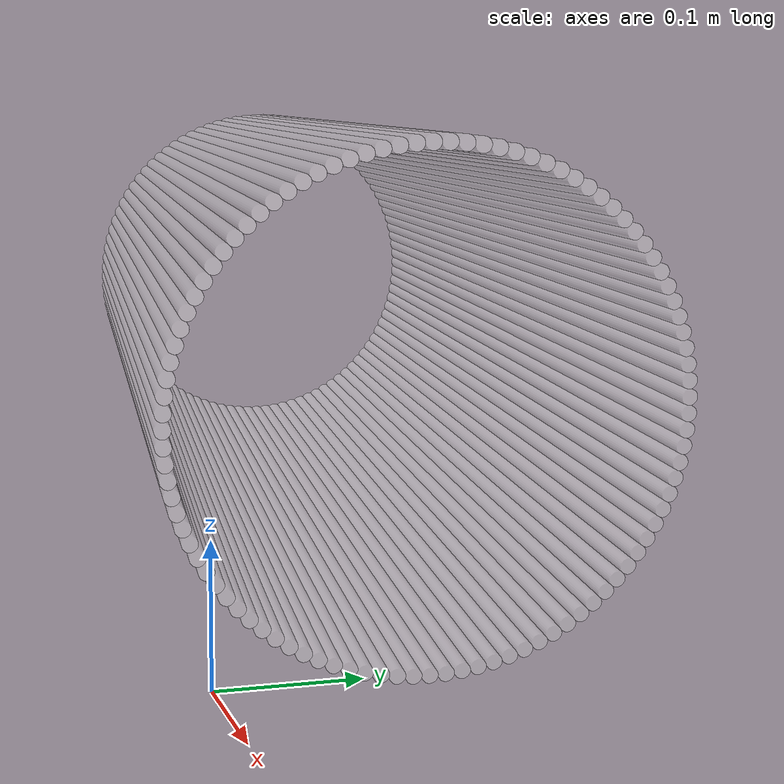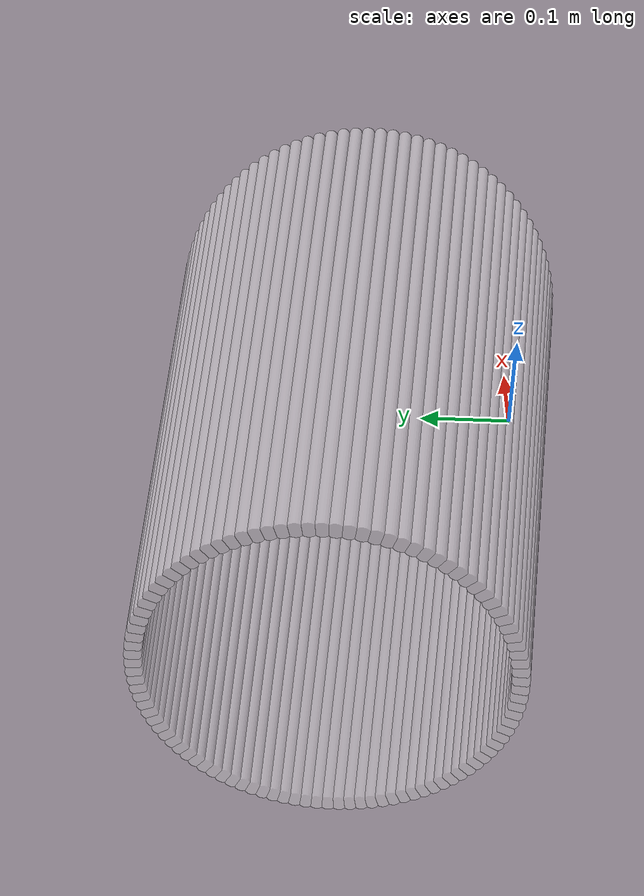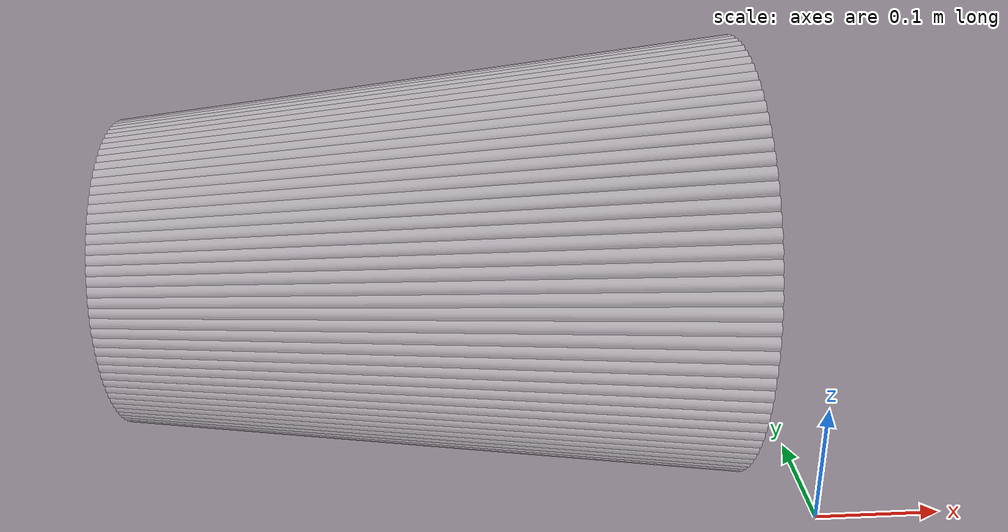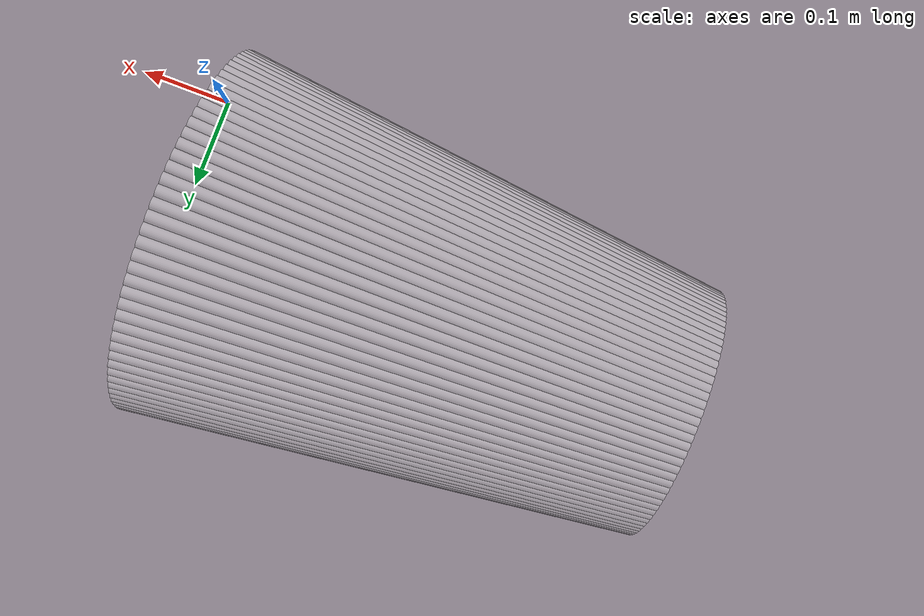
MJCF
<?xml version="1.0" encoding="utf-8"?>
<mujoco>
   <worldbody>
      <body pos="0 0.34 0" euler="0 0 270">
      <geom euler=" 0 10 0 " fromto="0.36 -0.05 0.16 0.3 -0.55 0.16" rgba="1 1 1 0.35"
            size="0.0056539"
            type="cylinder"/>
      <geom euler=" 0 20 0 " fromto="0.35964 -0.05 0.1713 0.29976 -0.55 0.16753"
            rgba="1 1 1 0.35"
            size="0.0056539"
            type="cylinder"/>
      <geom euler=" 0 30 0 " fromto="0.35858 -0.05 0.18256 0.29905 -0.55 0.17504"
            rgba="1 1 1 0.35"
            size="0.0056539"
            type="cylinder"/>
      <geom euler=" 0 40 0 " fromto="0.35681 -0.05 0.19373 0.29787 -0.55 0.18249"
            rgba="1 1 1 0.35"
            size="0.0056539"
            type="cylinder"/>
      <geom euler=" 0 50 0 " fromto="0.35434 -0.05 0.20476 0.29623 -0.55 0.18984"
            rgba="1 1 1 0.35"
            size="0.0056539"
            type="cylinder"/>
      <geom euler=" 0 60 0 " fromto="0.35119 -0.05 0.21562 0.29413 -0.55 0.19708"
            rgba="1 1 1 0.35"
            size="0.0056539"
            type="cylinder"/>
      <geom euler=" 0 70 0 " fromto="0.34736 -0.05 0.22626 0.29157 -0.55 0.20417"
            rgba="1 1 1 0.35"
            size="0.0056539"
            type="cylinder"/>
      <geom euler=" 0 80 0 " fromto="0.34287 -0.05 0.23664 0.28858 -0.55 0.21109"
            rgba="1 1 1 0.35"
            size="0.0056539"
            type="cylinder"/>
      <geom euler=" 0 90 0 " fromto="0.33774 -0.05 0.24672 0.28516 -0.55 0.21781"
            rgba="1 1 1 0.35"
            size="0.0056539"
            type="cylinder"/>
      <geom euler=" 0 100 0 " fromto="0.33198 -0.05 0.25645 0.28132 -0.55 0.2243"
            rgba="1 1 1 0.35"
            size="0.0056539"
            type="cylinder"/>
      <geom euler=" 0 110 0 " fromto="0.32562 -0.05 0.2658 0.27708 -0.55 0.23053"
            rgba="1 1 1 0.35"
            size="0.0056539"
            type="cylinder"/>
      <geom euler=" 0 120 0 " fromto="0.31869 -0.05 0.27474 0.27246 -0.55 0.23649"
            rgba="1 1 1 0.35"
            size="0.0056539"
            type="cylinder"/>
      <geom euler=" 0 130 0 " fromto="0.31121 -0.05 0.28322 0.26748 -0.55 0.24215"
            rgba="1 1 1 0.35"
            size="0.0056539"
            type="cylinder"/>
      <geom euler=" 0 140 0 " fromto="0.30322 -0.05 0.29121 0.26215 -0.55 0.24748"
            rgba="1 1 1 0.35"
            size="0.0056539"
            type="cylinder"/>
      <geom euler=" 0 150 0 " fromto="0.29474 -0.05 0.29869 0.25649 -0.55 0.25246"
            rgba="1 1 1 0.35"
            size="0.0056539"
            type="cylinder"/>
      <geom euler=" 0 160 0 " fromto="0.2858 -0.05 0.30562 0.25053 -0.55 0.25708"
            rgba="1 1 1 0.35"
            size="0.0056539"
            type="cylinder"/>
      <geom euler=" 0 170 0 " fromto="0.27645 -0.05 0.31198 0.2443 -0.55 0.26132"
            rgba="1 1 1 0.35"
            size="0.0056539"
            type="cylinder"/>
      <geom euler=" 0 180 0 " fromto="0.26672 -0.05 0.31774 0.23781 -0.55 0.26516"
            rgba="1 1 1 0.35"
            size="0.0056539"
            type="cylinder"/>
      <geom euler=" 0 190 0 " fromto="0.25664 -0.05 0.32287 0.23109 -0.55 0.26858"
            rgba="1 1 1 0.35"
            size="0.0056539"
            type="cylinder"/>
      <geom euler=" 0 200 0 " fromto="0.24626 -0.05 0.32736 0.22417 -0.55 0.27157"
            rgba="1 1 1 0.35"
            size="0.0056539"
            type="cylinder"/>
      <geom euler=" 0 210 0 " fromto="0.23562 -0.05 0.33119 0.21708 -0.55 0.27413"
            rgba="1 1 1 0.35"
            size="0.0056539"
            type="cylinder"/>
      <geom euler=" 0 220 0 " fromto="0.22476 -0.05 0.33434 0.20984 -0.55 0.27623"
            rgba="1 1 1 0.35"
            size="0.0056539"
            type="cylinder"/>
      <geom euler=" 0 230 0 " fromto="0.21373 -0.05 0.33681 0.20249 -0.55 0.27787"
            rgba="1 1 1 0.35"
            size="0.0056539"
            type="cylinder"/>
      <geom euler=" 0 240 0 " fromto="0.20256 -0.05 0.33858 0.19504 -0.55 0.27905"
            rgba="1 1 1 0.35"
            size="0.0056539"
            type="cylinder"/>
      <geom euler=" 0 250 0 " fromto="0.1913 -0.05 0.33964 0.18753 -0.55 0.27976"
            rgba="1 1 1 0.35"
            size="0.0056539"
            type="cylinder"/>
      <geom euler=" 0 260 0 " fromto="0.18 -0.05 0.34 0.18 -0.55 0.28" rgba="1 1 1 0.35"
            size="0.0056539"
            type="cylinder"/>
      <geom euler=" 0 270 0 " fromto="0.1687 -0.05 0.33964 0.17247 -0.55 0.27976"
            rgba="1 1 1 0.35"
            size="0.0056539"
            type="cylinder"/>
      <geom euler=" 0 280 0 " fromto="0.15744 -0.05 0.33858 0.16496 -0.55 0.27905"
            rgba="1 1 1 0.35"
            size="0.0056539"
            type="cylinder"/>
      <geom euler=" 0 290 0 " fromto="0.14627 -0.05 0.33681 0.15751 -0.55 0.27787"
            rgba="1 1 1 0.35"
            size="0.0056539"
            type="cylinder"/>
      <geom euler=" 0 300 0 " fromto="0.13524 -0.05 0.33434 0.15016 -0.55 0.27623"
            rgba="1 1 1 0.35"
            size="0.0056539"
            type="cylinder"/>
      <geom euler=" 0 310 0 " fromto="0.12438 -0.05 0.33119 0.14292 -0.55 0.27413"
            rgba="1 1 1 0.35"
            size="0.0056539"
            type="cylinder"/>
      <geom euler=" 0 320 0 " fromto="0.11374 -0.05 0.32736 0.13583 -0.55 0.27157"
            rgba="1 1 1 0.35"
            size="0.0056539"
            type="cylinder"/>
      <geom euler=" 0 330 0 " fromto="0.10336 -0.05 0.32287 0.12891 -0.55 0.26858"
            rgba="1 1 1 0.35"
            size="0.0056539"
            type="cylinder"/>
      <geom euler=" 0 340 0 " fromto="0.093284 -0.05 0.31774 0.12219 -0.55 0.26516"
            rgba="1 1 1 0.35"
            size="0.0056539"
            type="cylinder"/>
      <geom euler=" 0 350 0 " fromto="0.083551 -0.05 0.31198 0.1157 -0.55 0.26132"
            rgba="1 1 1 0.35"
            size="0.0056539"
            type="cylinder"/>
      <geom euler=" 0 360 0 " fromto="0.074199 -0.05 0.30562 0.10947 -0.55 0.25708"
            rgba="1 1 1 0.35"
            size="0.0056539"
            type="cylinder"/>
      <geom euler=" 0 370 0 " fromto="0.065264 -0.05 0.29869 0.10351 -0.55 0.25246"
            rgba="1 1 1 0.35"
            size="0.0056539"
            type="cylinder"/>
      <geom euler=" 0 380 0 " fromto="0.056782 -0.05 0.29121 0.097854 -0.55 0.24748"
            rgba="1 1 1 0.35"
            size="0.0056539"
            type="cylinder"/>
      <geom euler=" 0 390 0 " fromto="0.048786 -0.05 0.28322 0.092524 -0.55 0.24215"
            rgba="1 1 1 0.35"
            size="0.0056539"
            type="cylinder"/>
      <geom euler=" 0 400 0 " fromto="0.041308 -0.05 0.27474 0.087538 -0.55 0.23649"
            rgba="1 1 1 0.35"
            size="0.0056539"
            type="cylinder"/>
      <geom euler=" 0 410 0 " fromto="0.034377 -0.05 0.2658 0.082918 -0.55 0.23053"
            rgba="1 1 1 0.35"
            size="0.0056539"
            type="cylinder"/>
      <geom euler=" 0 420 0 " fromto="0.028021 -0.05 0.25645 0.078681 -0.55 0.2243"
            rgba="1 1 1 0.35"
            size="0.0056539"
            type="cylinder"/>
      <geom euler=" 0 430 0 " fromto="0.022265 -0.05 0.24672 0.074843 -0.55 0.21781"
            rgba="1 1 1 0.35"
            size="0.0056539"
            type="cylinder"/>
      <geom euler=" 0 440 0 " fromto="0.017131 -0.05 0.23664 0.071421 -0.55 0.21109"
            rgba="1 1 1 0.35"
            size="0.0056539"
            type="cylinder"/>
      <geom euler=" 0 450 0 " fromto="0.01264 -0.05 0.22626 0.068427 -0.55 0.20417"
            rgba="1 1 1 0.35"
            size="0.0056539"
            type="cylinder"/>
      <geom euler=" 0 460 0 " fromto="0.0088098 -0.05 0.21562 0.065873 -0.55 0.19708"
            rgba="1 1 1 0.35"
            size="0.0056539"
            type="cylinder"/>
      <geom euler=" 0 470 0 " fromto="0.005655 -0.05 0.20476 0.06377 -0.55 0.18984"
            rgba="1 1 1 0.35"
            size="0.0056539"
            type="cylinder"/>
      <geom euler=" 0 480 0 " fromto="0.0031883 -0.05 0.19373 0.062126 -0.55 0.18249"
            rgba="1 1 1 0.35"
            size="0.0056539"
            type="cylinder"/>
      <geom euler=" 0 490 0 " fromto="0.0014194 -0.05 0.18256 0.060946 -0.55 0.17504"
            rgba="1 1 1 0.35"
            size="0.0056539"
            type="cylinder"/>
      <geom euler=" 0 500 0 " fromto="0.00035519 -0.05 0.1713 0.060237 -0.55 0.16753"
            rgba="1 1 1 0.35"
            size="0.0056539"
            type="cylinder"/>
      <geom euler=" 0 510 0 " fromto="0 -0.05 0.16 0.06 -0.55 0.16" rgba="1 1 1 0.35"
            size="0.0056539"
            type="cylinder"/>
      <geom euler=" 0 520 0 " fromto="0.00035519 -0.05 0.1487 0.060237 -0.55 0.15247"
            rgba="1 1 1 0.35"
            size="0.0056539"
            type="cylinder"/>
      <geom euler=" 0 530 0 " fromto="0.0014194 -0.05 0.13744 0.060946 -0.55 0.14496"
            rgba="1 1 1 0.35"
            size="0.0056539"
            type="cylinder"/>
      <geom euler=" 0 540 0 " fromto="0.0031883 -0.05 0.12627 0.062126 -0.55 0.13751"
            rgba="1 1 1 0.35"
            size="0.0056539"
            type="cylinder"/>
      <geom euler=" 0 550 0 " fromto="0.005655 -0.05 0.11524 0.06377 -0.55 0.13016"
            rgba="1 1 1 0.35"
            size="0.0056539"
            type="cylinder"/>
      <geom euler=" 0 560 0 " fromto="0.0088098 -0.05 0.10438 0.065873 -0.55 0.12292"
            rgba="1 1 1 0.35"
            size="0.0056539"
            type="cylinder"/>
      <geom euler=" 0 570 0 " fromto="0.01264 -0.05 0.093738 0.068427 -0.55 0.11583"
            rgba="1 1 1 0.35"
            size="0.0056539"
            type="cylinder"/>
      <geom euler=" 0 580 0 " fromto="0.017131 -0.05 0.08336 0.071421 -0.55 0.10891"
            rgba="1 1 1 0.35"
            size="0.0056539"
            type="cylinder"/>
      <geom euler=" 0 590 0 " fromto="0.022265 -0.05 0.073284 0.074843 -0.55 0.10219"
            rgba="1 1 1 0.35"
            size="0.0056539"
            type="cylinder"/>
      <geom euler=" 0 600 0 " fromto="0.028021 -0.05 0.063551 0.078681 -0.55 0.095701"
            rgba="1 1 1 0.35"
            size="0.0056539"
            type="cylinder"/>
      <geom euler=" 0 610 0 " fromto="0.034377 -0.05 0.054199 0.082918 -0.55 0.089466"
            rgba="1 1 1 0.35"
            size="0.0056539"
            type="cylinder"/>
      <geom euler=" 0 620 0 " fromto="0.041308 -0.05 0.045264 0.087538 -0.55 0.083509"
            rgba="1 1 1 0.35"
            size="0.0056539"
            type="cylinder"/>
      <geom euler=" 0 630 0 " fromto="0.048786 -0.05 0.036782 0.092524 -0.55 0.077854"
            rgba="1 1 1 0.35"
            size="0.0056539"
            type="cylinder"/>
      <geom euler=" 0 640 0 " fromto="0.056782 -0.05 0.028786 0.097854 -0.55 0.072524"
            rgba="1 1 1 0.35"
            size="0.0056539"
            type="cylinder"/>
      <geom euler=" 0 650 0 " fromto="0.065264 -0.05 0.021308 0.10351 -0.55 0.067538"
            rgba="1 1 1 0.35"
            size="0.0056539"
            type="cylinder"/>
      <geom euler=" 0 660 0 " fromto="0.074199 -0.05 0.014377 0.10947 -0.55 0.062918"
            rgba="1 1 1 0.35"
            size="0.0056539"
            type="cylinder"/>
      <geom euler=" 0 670 0 " fromto="0.083551 -0.05 0.008021 0.1157 -0.55 0.058681"
            rgba="1 1 1 0.35"
            size="0.0056539"
            type="cylinder"/>
      <geom euler=" 0 680 0 " fromto="0.093284 -0.05 0.0022648 0.12219 -0.55 0.054843"
            rgba="1 1 1 0.35"
            size="0.0056539"
            type="cylinder"/>
      <geom euler=" 0 690 0 " fromto="0.10336 -0.05 -0.0028689 0.12891 -0.55 0.051421"
            rgba="1 1 1 0.35"
            size="0.0056539"
            type="cylinder"/>
      <geom euler=" 0 700 0 " fromto="0.11374 -0.05 -0.0073598 0.13583 -0.55 0.048427"
            rgba="1 1 1 0.35"
            size="0.0056539"
            type="cylinder"/>
      <geom euler=" 0 710 0 " fromto="0.12438 -0.05 -0.01119 0.14292 -0.55 0.045873"
            rgba="1 1 1 0.35"
            size="0.0056539"
            type="cylinder"/>
      <geom euler=" 0 720 0 " fromto="0.13524 -0.05 -0.014345 0.15016 -0.55 0.04377"
            rgba="1 1 1 0.35"
            size="0.0056539"
            type="cylinder"/>
      <geom euler=" 0 730 0 " fromto="0.14627 -0.05 -0.016812 0.15751 -0.55 0.042126"
            rgba="1 1 1 0.35"
            size="0.0056539"
            type="cylinder"/>
      <geom euler=" 0 740 0 " fromto="0.15744 -0.05 -0.018581 0.16496 -0.55 0.040946"
            rgba="1 1 1 0.35"
            size="0.0056539"
            type="cylinder"/>
      <geom euler=" 0 750 0 " fromto="0.1687 -0.05 -0.019645 0.17247 -0.55 0.040237"
            rgba="1 1 1 0.35"
            size="0.0056539"
            type="cylinder"/>
      <geom euler=" 0 760 0 " fromto="0.18 -0.05 -0.02 0.18 -0.55 0.04" rgba="1 1 1 0.35"
            size="0.0056539"
            type="cylinder"/>
      <geom euler=" 0 770 0 " fromto="0.1913 -0.05 -0.019645 0.18753 -0.55 0.040237"
            rgba="1 1 1 0.35"
            size="0.0056539"
            type="cylinder"/>
      <geom euler=" 0 780 0 " fromto="0.20256 -0.05 -0.018581 0.19504 -0.55 0.040946"
            rgba="1 1 1 0.35"
            size="0.0056539"
            type="cylinder"/>
      <geom euler=" 0 790 0 " fromto="0.21373 -0.05 -0.016812 0.20249 -0.55 0.042126"
            rgba="1 1 1 0.35"
            size="0.0056539"
            type="cylinder"/>
      <geom euler=" 0 800 0 " fromto="0.22476 -0.05 -0.014345 0.20984 -0.55 0.04377"
            rgba="1 1 1 0.35"
            size="0.0056539"
            type="cylinder"/>
      <geom euler=" 0 810 0 " fromto="0.23562 -0.05 -0.01119 0.21708 -0.55 0.045873"
            rgba="1 1 1 0.35"
            size="0.0056539"
            type="cylinder"/>
      <geom euler=" 0 820 0 " fromto="0.24626 -0.05 -0.0073598 0.22417 -0.55 0.048427"
            rgba="1 1 1 0.35"
            size="0.0056539"
            type="cylinder"/>
      <geom euler=" 0 830 0 " fromto="0.25664 -0.05 -0.0028689 0.23109 -0.55 0.051421"
            rgba="1 1 1 0.35"
            size="0.0056539"
            type="cylinder"/>
      <geom euler=" 0 840 0 " fromto="0.26672 -0.05 0.0022648 0.23781 -0.55 0.054843"
            rgba="1 1 1 0.35"
            size="0.0056539"
            type="cylinder"/>
      <geom euler=" 0 850 0 " fromto="0.27645 -0.05 0.008021 0.2443 -0.55 0.058681"
            rgba="1 1 1 0.35"
            size="0.0056539"
            type="cylinder"/>
      <geom euler=" 0 860 0 " fromto="0.2858 -0.05 0.014377 0.25053 -0.55 0.062918"
            rgba="1 1 1 0.35"
            size="0.0056539"
            type="cylinder"/>
      <geom euler=" 0 870 0 " fromto="0.29474 -0.05 0.021308 0.25649 -0.55 0.067538"
            rgba="1 1 1 0.35"
            size="0.0056539"
            type="cylinder"/>
      <geom euler=" 0 880 0 " fromto="0.30322 -0.05 0.028786 0.26215 -0.55 0.072524"
            rgba="1 1 1 0.35"
            size="0.0056539"
            type="cylinder"/>
      <geom euler=" 0 890 0 " fromto="0.31121 -0.05 0.036782 0.26748 -0.55 0.077854"
            rgba="1 1 1 0.35"
            size="0.0056539"
            type="cylinder"/>
      <geom euler=" 0 900 0 " fromto="0.31869 -0.05 0.045264 0.27246 -0.55 0.083509"
            rgba="1 1 1 0.35"
            size="0.0056539"
            type="cylinder"/>
      <geom euler=" 0 910 0 " fromto="0.32562 -0.05 0.054199 0.27708 -0.55 0.089466"
            rgba="1 1 1 0.35"
            size="0.0056539"
            type="cylinder"/>
      <geom euler=" 0 920 0 " fromto="0.33198 -0.05 0.063551 0.28132 -0.55 0.095701"
            rgba="1 1 1 0.35"
            size="0.0056539"
            type="cylinder"/>
      <geom euler=" 0 930 0 " fromto="0.33774 -0.05 0.073284 0.28516 -0.55 0.10219"
            rgba="1 1 1 0.35"
            size="0.0056539"
            type="cylinder"/>
      <geom euler=" 0 940 0 " fromto="0.34287 -0.05 0.08336 0.28858 -0.55 0.10891"
            rgba="1 1 1 0.35"
            size="0.0056539"
            type="cylinder"/>
      <geom euler=" 0 950 0 " fromto="0.34736 -0.05 0.093738 0.29157 -0.55 0.11583"
            rgba="1 1 1 0.35"
            size="0.0056539"
            type="cylinder"/>
      <geom euler=" 0 960 0 " fromto="0.35119 -0.05 0.10438 0.29413 -0.55 0.12292"
            rgba="1 1 1 0.35"
            size="0.0056539"
            type="cylinder"/>
      <geom euler=" 0 970 0 " fromto="0.35434 -0.05 0.11524 0.29623 -0.55 0.13016"
            rgba="1 1 1 0.35"
            size="0.0056539"
            type="cylinder"/>
      <geom euler=" 0 980 0 " fromto="0.35681 -0.05 0.12627 0.29787 -0.55 0.13751"
            rgba="1 1 1 0.35"
            size="0.0056539"
            type="cylinder"/>
      <geom euler=" 0 990 0 " fromto="0.35858 -0.05 0.13744 0.29905 -0.55 0.14496"
            rgba="1 1 1 0.35"
            size="0.0056539"
            type="cylinder"/>
      <geom euler=" 0 1000 0 " fromto="0.35964 -0.05 0.1487 0.29976 -0.55 0.15247"
            rgba="1 1 1 0.35"
            size="0.0056539"
            type="cylinder"/>
      </body>
   </worldbody>
</mujoco>
